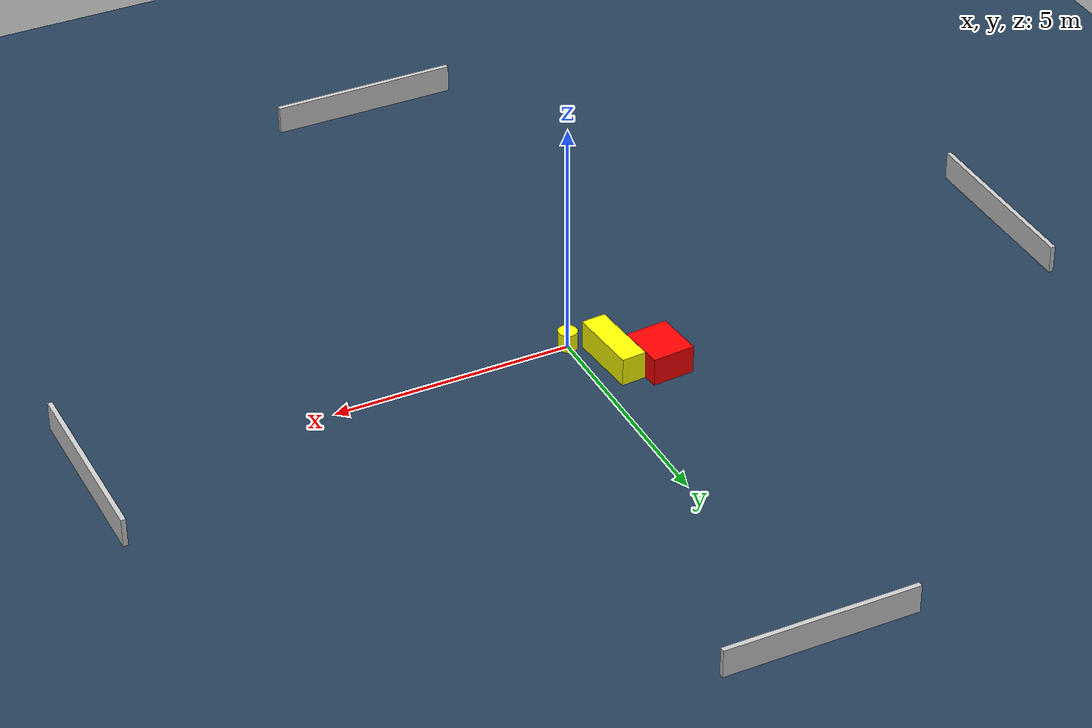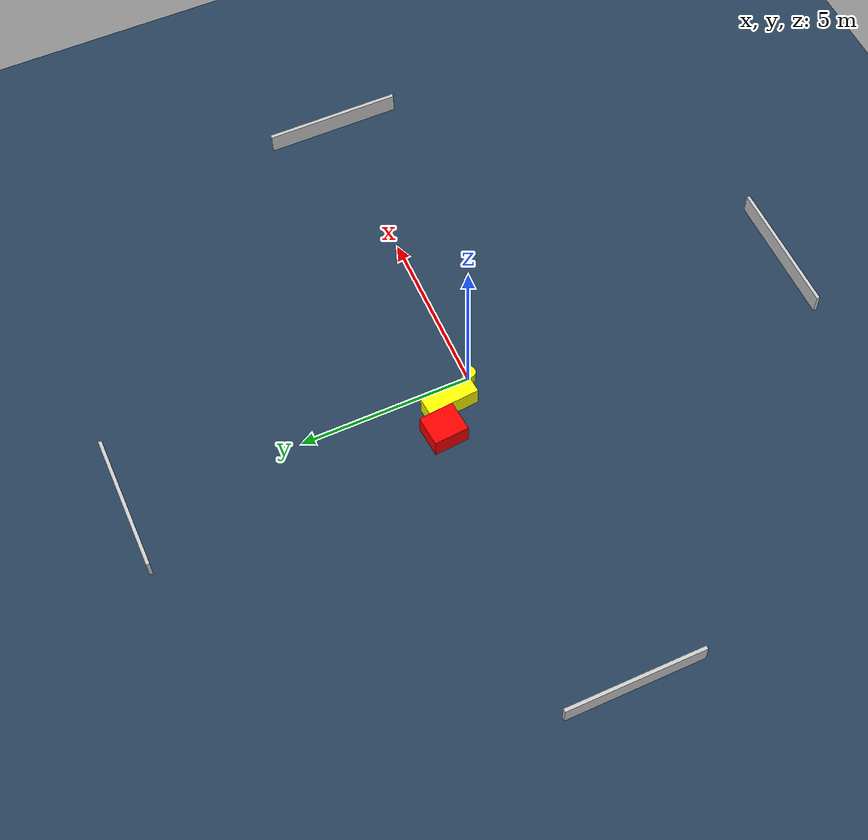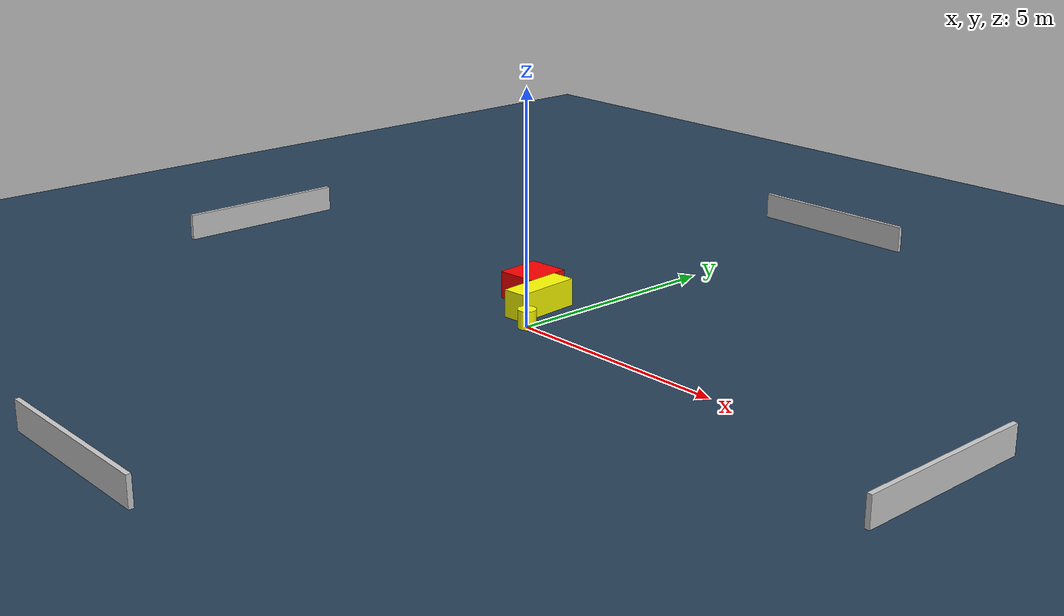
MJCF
<?xml version="1.0" ?>
<mujoco model="generated_environment">
  <option timestep="0.01" integrator="RK4" cone="elliptic"/>
  <default>
    <geom density="1"/>
  </default>
  <asset>
    <texture builtin="gradient" height="3072" name="skybox" rgb1="0.3 0.5 0.7" rgb2="0 0 0" type="skybox" width="512"/>
    <texture builtin="checker" height="300" name="groundplane" rgb1="0.2 0.3 0.4" rgb2="0.1 0.2 0.3" type="2d" width="300"/>
    <material name="groundplane" reflectance="0.2" texrepeat="5 5" texture="groundplane"/>
  </asset>
  <worldbody>
    <light dir="0 0 -1" directional="true" pos="0 0 1.5"/>
    <geom condim="3" friction="0.5 0.005 0.001" material="groundplane" name="floor" pos="0 0 0" size="0 0 0.05" type="plane"/>
    <body name="walls">
      <geom name="wall_1" condim="4" pos="-10.0 0.0 0.3" rgba="0.800000011920929 0.800000011920929 0.800000011920929 1.0" size="0.05 2.0 0.3" type="box"/>
      <geom name="wall_2" condim="4" pos="10.0 0.0 0.3" rgba="0.800000011920929 0.800000011920929 0.800000011920929 1.0" size="0.05 2.0 0.3" type="box"/>
      <geom name="wall_3" condim="4" pos="0.0 -10.0 0.3" rgba="0.800000011920929 0.800000011920929 0.800000011920929 1.0" size="2.0 0.05 0.3" type="box"/>
      <geom name="wall_4" condim="4" pos="0.0 10.0 0.3" rgba="0.800000011920929 0.800000011920929 0.800000011920929 1.0" size="2.0 0.05 0.3" type="box"/>
    </body>
    <body name="robot">
      <joint name="joint_x" type="slide" pos="0 0 0" axis="1 0 0"/>
      <joint name="joint_y" type="slide" pos="0 0 0" axis="0 1 0"/>
      <geom name="robot" type="cylinder" pos="0.0 0.0 0.2" size="0.2 0.2 0.0" mass="5.0" friction="1.0 0.005 0.0001" condim="4" rgba="1.0 1.0 0.0 1.0"/>
    </body>
    <body name="obstacle_1_movable">
      <geom name="obstacle_1_movable" condim="4" pos="-0.5774029396395746 0.8441575363121482 0.3" euler="0 0 184.69234417356404" friction="0.0 0.005 0.001" rgba="1.0 1.0 0.0 1.0" size="0.25929064259880985 0.7594674812200717 0.3" type="box" mass="0.1"/>
      <joint type="free"/>
    </body>
    <body name="obstacle_2_static">
      <geom name="obstacle_2_static" condim="4" pos="-1.3356920200186468 1.3496487378685722 0.3" euler="0 0 94.84429583867788" friction="0.0 0.005 0.001" rgba="1.0 0.0 0.0 1.0" size="0.5103322981064977 0.44999786316552726 0.3" type="box"/>
    </body>
  </worldbody>
  <actuator>
    <motor name="actuator_x" joint="joint_x" gear="1" ctrlrange="-1 1"/>
    <motor name="actuator_y" joint="joint_y" gear="1" ctrlrange="-1 1"/>
  </actuator>
</mujoco>
